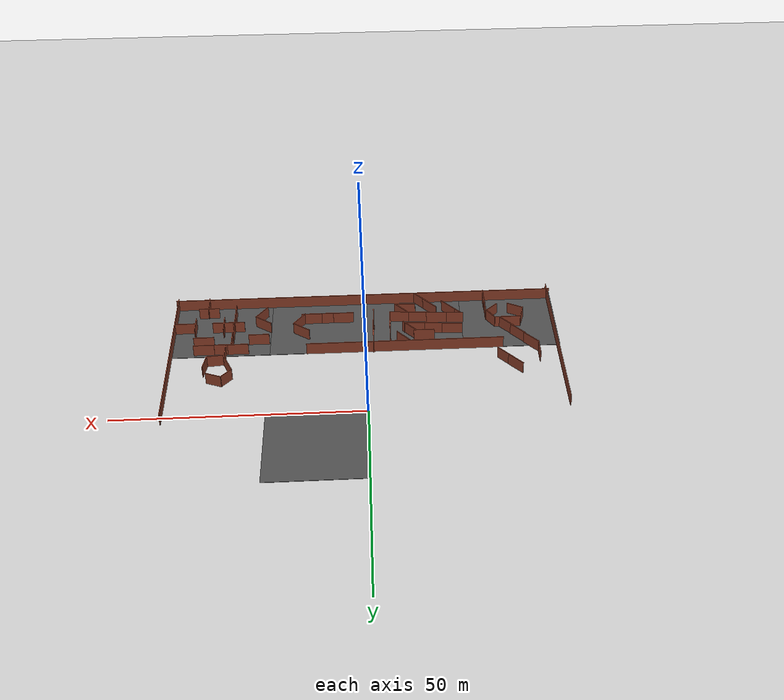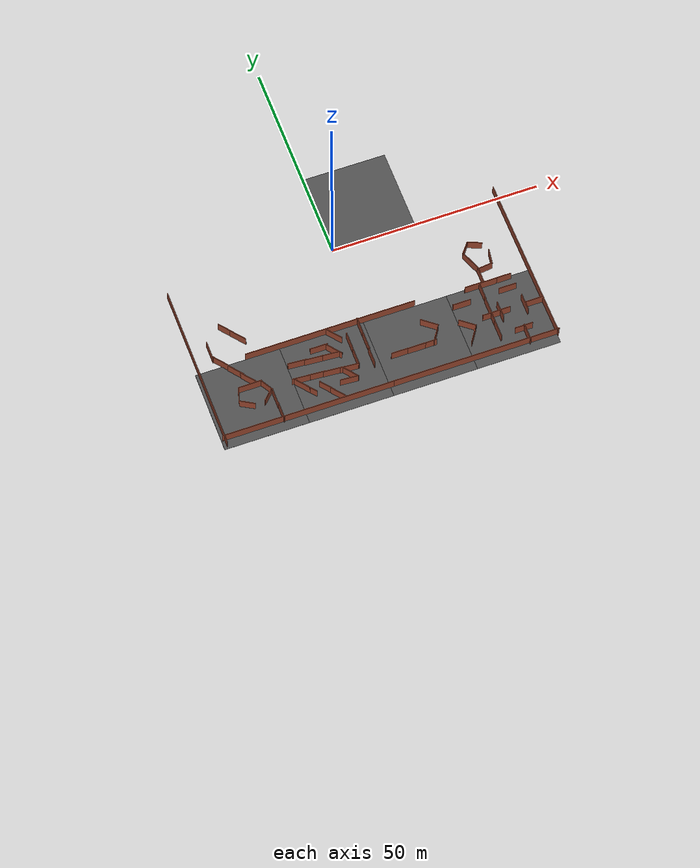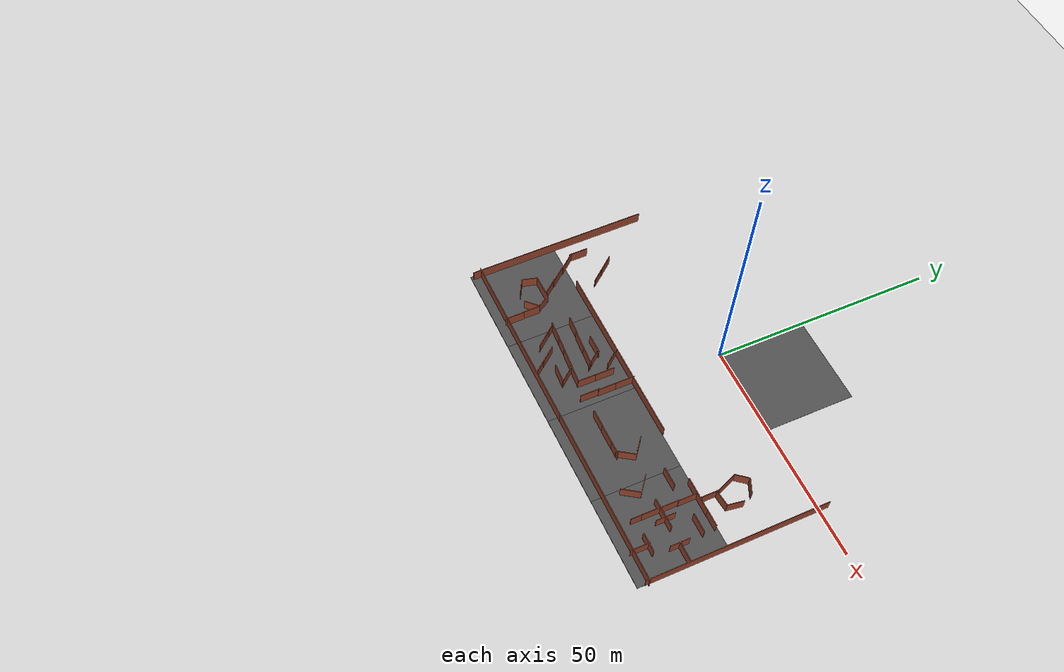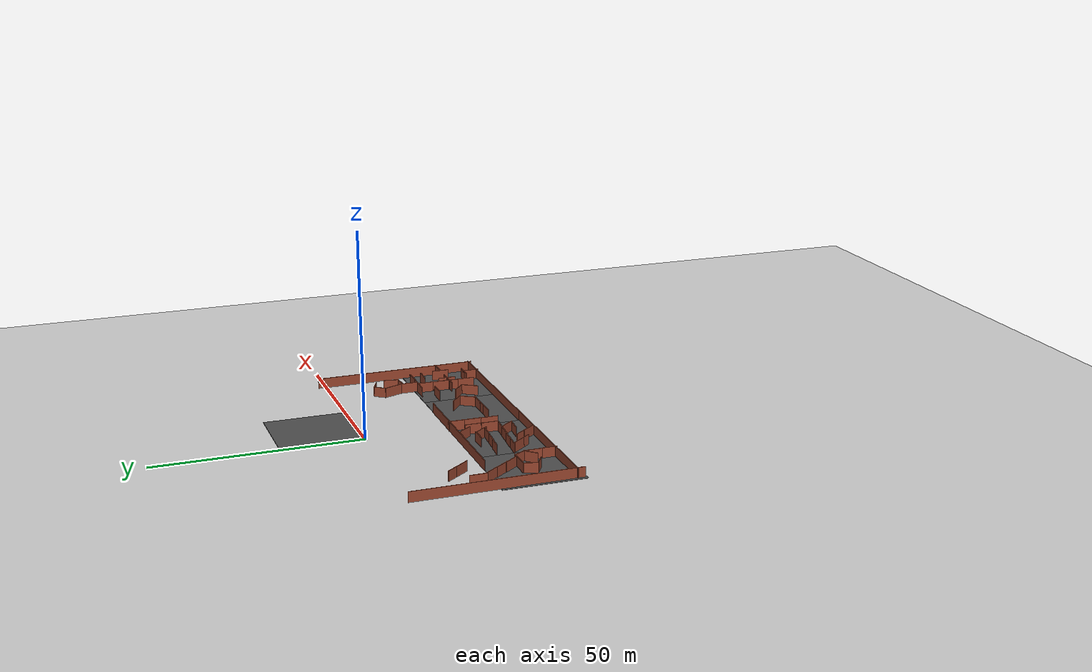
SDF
<sdf version="1.6">
 <world name="default">
  <model name="ground_plane">
   <static>1</static>
   <link name="link">
    <collision name="collision">
     <geometry><plane><normal>0 0 1</normal><size>100 100</size></plane></geometry>
     <surface><friction><ode><mu>100</mu><mu2>50</mu2></ode></friction></surface>
    </collision>
    <visual name="visual">
     <cast_shadows>0</cast_shadows>
     <geometry><plane><normal>0 0 1</normal><size>100 100</size></plane></geometry>
     <material>
      <script><uri>file://media/materials/scripts/gazebo.material</uri><name>Gazebo/Grey</name></script>
     </material>
    </visual>
   </link>
  </model>
  <model name="asphalt_plane">
   <static>1</static>
   <link name="link">
    <collision name="collision"><geometry><box><size>20 20 0.1</size></box></geometry></collision>
    <visual name="visual">
     <cast_shadows>0</cast_shadows>
     <geometry><box><size>20 20 0.1</size></box></geometry>
     <material>
      <script>
       <uri>model://asphalt_plane/materials/scripts</uri>
       <uri>model://asphalt_plane/materials/textures</uri>
       <name>vrc/asphalt</name>
      </script>
     </material>
    </visual>
   </link>
   <pose>10 10 0 0 -0 0</pose>
  </model>
  <model name="asphalt_plane_4_clone_1">
   <static>1</static>
   <link name="link">
    <collision name="collision"><geometry><box><size>20 20 0.1</size></box></geometry></collision>
    <visual name="visual">
     <cast_shadows>0</cast_shadows>
     <geometry><box><size>20 20 0.1</size></box></geometry>
     <material>
      <script>
       <uri>model://asphalt_plane/materials/scripts</uri>
       <uri>model://asphalt_plane/materials/textures</uri>
       <name>vrc/asphalt</name>
      </script>
     </material>
    </visual>
   </link>
   <pose>-30.0158 -30.1368 0 0 -0 0</pose>
  </model>
  <model name="asphalt_plane_4_clone_5">
   <static>1</static>
   <link name="link">
    <collision name="collision"><geometry><box><size>20 20 0.1</size></box></geometry></collision>
    <visual name="visual">
     <cast_shadows>0</cast_shadows>
     <geometry><box><size>20 20 0.1</size></box></geometry>
     <material>
      <script>
       <uri>model://asphalt_plane/materials/scripts</uri>
       <uri>model://asphalt_plane/materials/textures</uri>
       <name>vrc/asphalt</name>
      </script>
     </material>
    </visual>
   </link>
   <pose>-10.0155 -30.1486 0 0 -0 0</pose>
  </model>
  <model name="asphalt_plane_4_clone_7">
   <static>1</static>
   <link name="link">
    <collision name="collision"><geometry><box><size>20 20 0.1</size></box></geometry></collision>
    <visual name="visual">
     <cast_shadows>0</cast_shadows>
     <geometry><box><size>20 20 0.1</size></box></geometry>
     <material>
      <script>
       <uri>model://asphalt_plane/materials/scripts</uri>
       <uri>model://asphalt_plane/materials/textures</uri>
       <name>vrc/asphalt</name>
      </script>
     </material>
    </visual>
   </link>
   <pose>9.97841 -30.1503 0 0 -0 0</pose>
  </model>
  <model name="asphalt_plane_4_clone_14">
   <static>1</static>
   <link name="link">
    <collision name="collision"><geometry><box><size>20 20 0.1</size></box></geometry></collision>
    <visual name="visual">
     <cast_shadows>0</cast_shadows>
     <geometry><box><size>20 20 0.1</size></box></geometry>
     <material>
      <script>
       <uri>model://asphalt_plane/materials/scripts</uri>
       <uri>model://asphalt_plane/materials/textures</uri>
       <name>vrc/asphalt</name>
      </script>
     </material>
    </visual>
   </link>
   <pose>29.9745 -30.1402 0 0 -0 0</pose>
  </model>
  <model name="longwall_clone_clone_1">
   <pose>-19.4354 -37.8888 0 0 -0 0</pose>
   <link name="Wall_0">
    <collision name="Wall_0_Collision">
     <geometry><box><size>40.5 0.15 2.5</size></box></geometry>
     <pose>0 0 1.25 0 -0 0</pose>
    </collision>
    <visual name="Wall_0_Visual">
     <pose>0 0 1.25 0 -0 0</pose>
     <geometry><box><size>40.5 0.15 2.5</size></box></geometry>
     <material>
      <script><uri>file://media/materials/scripts/gazebo.material</uri><name>Gazebo/Bricks</name></script>
      <ambient>1 1 1 1</ambient>
     </material>
    </visual>
    <pose>1e-06 0 0 0 -0 0</pose>
   </link>
   <static>1</static>
  </model>
  <model name="longwall_clone_clone_3_clone_0">
   <pose>39.9316 -18.2995 0 0 0 -1.56602</pose>
   <link name="Wall_0">
    <collision name="Wall_0_Collision">
     <geometry><box><size>40.5 0.15 2.5</size></box></geometry>
     <pose>0 0 1.25 0 -0 0</pose>
    </collision>
    <visual name="Wall_0_Visual">
     <pose>0 0 1.25 0 -0 0</pose>
     <geometry><box><size>40.5 0.15 2.5</size></box></geometry>
     <material>
      <script><uri>file://media/materials/scripts/gazebo.material</uri><name>Gazebo/Bricks</name></script>
      <ambient>1 1 1 1</ambient>
     </material>
    </visual>
    <pose>1e-06 0 0 0 -0 0</pose>
   </link>
   <static>1</static>
  </model>
  <model name="longwall_clone_clone_3_clone_1">
   <pose>-39.2782 -19.4847 0 0 0 -1.56602</pose>
   <link name="Wall_0">
    <collision name="Wall_0_Collision">
     <geometry><box><size>40.5 0.15 2.5</size></box></geometry>
     <pose>0 0 1.25 0 -0 0</pose>
    </collision>
    <visual name="Wall_0_Visual">
     <pose>0 0 1.25 0 -0 0</pose>
     <geometry><box><size>40.5 0.15 2.5</size></box></geometry>
     <material>
      <script><uri>file://media/materials/scripts/gazebo.material</uri><name>Gazebo/Bricks</name></script>
      <ambient>1 1 1 1</ambient>
     </material>
    </visual>
    <pose>1e-06 0 0 0 -0 0</pose>
   </link>
   <static>1</static>
  </model>
  <model name="longwall_clone_clone_0">
   <pose>-7.88088 -20.1055 0 0 -0 0</pose>
   <link name="Wall_0">
    <collision name="Wall_0_Collision">
     <geometry><box><size>40.5 0.15 2.5</size></box></geometry>
     <pose>0 0 1.25 0 -0 0</pose>
    </collision>
    <visual name="Wall_0_Visual">
     <pose>0 0 1.25 0 -0 0</pose>
     <geometry><box><size>40.5 0.15 2.5</size></box></geometry>
     <material>
      <script><uri>file://media/materials/scripts/gazebo.material</uri><name>Gazebo/Bricks</name></script>
      <ambient>1 1 1 1</ambient>
     </material>
    </visual>
    <pose>1e-06 0 0 0 -0 0</pose>
   </link>
   <static>1</static>
  </model>
  <model name="worlds_1_clone_1_clone_clone_0_clone">
   <pose>-1.39144 -21.9286 0 0 -0 0</pose>
   <link name="Wall_0">
    <collision name="Wall_0_Collision">
     <geometry><box><size>4.25 0.15 2.5</size></box></geometry>
     <pose>0 0 1.25 0 -0 0</pose>
    </collision>
    <visual name="Wall_0_Visual">
     <pose>0 0 1.25 0 -0 0</pose>
     <geometry><box><size>4.25 0.15 2.5</size></box></geometry>
     <material>
      <script><uri>file://media/materials/scripts/gazebo.material</uri><name>Gazebo/Bricks</name></script>
      <ambient>1 1 1 1</ambient>
     </material>
    </visual>
    <pose>0 -0 0 0 -0 1.5708</pose>
   </link>
   <static>1</static>
  </model>
  <model name="worlds_1_clone_1_clone_clone_0_clone_0">
   <pose>-1.40198 -25.9018 0 0 -0 0</pose>
   <link name="Wall_0">
    <collision name="Wall_0_Collision">
     <geometry><box><size>4.25 0.15 2.5</size></box></geometry>
     <pose>0 0 1.25 0 -0 0</pose>
    </collision>
    <visual name="Wall_0_Visual">
     <pose>0 0 1.25 0 -0 0</pose>
     <geometry><box><size>4.25 0.15 2.5</size></box></geometry>
     <material>
      <script><uri>file://media/materials/scripts/gazebo.material</uri><name>Gazebo/Bricks</name></script>
      <ambient>1 1 1 1</ambient>
     </material>
    </visual>
    <pose>0 -0 0 0 -0 1.5708</pose>
   </link>
   <static>1</static>
  </model>
  <model name="worlds_1_clone_1_clone_clone_0_clone_1">
   <pose>-1.54581 -29.924 0 0 -0 0</pose>
   <link name="Wall_0">
    <collision name="Wall_0_Collision">
     <geometry><box><size>4.25 0.15 2.5</size></box></geometry>
     <pose>0 0 1.25 0 -0 0</pose>
    </collision>
    <visual name="Wall_0_Visual">
     <pose>0 0 1.25 0 -0 0</pose>
     <geometry><box><size>4.25 0.15 2.5</size></box></geometry>
     <material>
      <script><uri>file://media/materials/scripts/gazebo.material</uri><name>Gazebo/Bricks</name></script>
      <ambient>1 1 1 1</ambient>
     </material>
    </visual>
    <pose>0 -0 0 0 -0 1.5708</pose>
   </link>
   <static>1</static>
  </model>
  <model name="room1_clone_0">
   <pose>-29.363 -30.1307 0 0 -0 0</pose>
   <link name="Wall_11">
    <collision name="Wall_11_Collision">
     <geometry><box><size>3.25 0.15 2.5</size></box></geometry>
     <pose>0 0 1.25 0 -0 0</pose>
    </collision>
    <visual name="Wall_11_Visual">
     <pose>0 0 1.25 0 -0 0</pose>
     <geometry><box><size>3.25 0.15 2.5</size></box></geometry>
     <material>
      <script><uri>file://media/materials/scripts/gazebo.material</uri><name>Gazebo/Bricks</name></script>
      <ambient>1 1 1 1</ambient>
     </material>
    </visual>
    <pose>3.12132 1.19483 0 0 0 -1.0472</pose>
   </link>
   <link name="Wall_12">
    <collision name="Wall_12_Collision">
     <geometry><box><size>3.5 0.15 2.5</size></box></geometry>
     <pose>0 0 1.25 0 -0 0</pose>
    </collision>
    <visual name="Wall_12_Visual">
     <pose>0 0 1.25 0 -0 0</pose>
     <geometry><box><size>3.5 0.15 2.5</size></box></geometry>
     <material>
      <script><uri>file://media/materials/scripts/gazebo.material</uri><name>Gazebo/Bricks</name></script>
      <ambient>1 1 1 1</ambient>
     </material>
    </visual>
    <pose>2.71192 -1.33192 0 0 0 -2.35619</pose>
   </link>
   <link name="Wall_7">
    <collision name="Wall_7_Collision">
     <geometry><box><size>5.52935 0.15 2.5</size></box></geometry>
     <pose>0 0 1.25 0 -0 0</pose>
    </collision>
    <visual name="Wall_7_Visual">
     <pose>0 0 1.25 0 -0 0</pose>
     <geometry><box><size>5.52935 0.15 2.5</size></box></geometry>
     <material>
      <script><uri>file://media/materials/scripts/gazebo.material</uri><name>Gazebo/Bricks</name></script>
      <ambient>1 1 1 1</ambient>
     </material>
    </visual>
    <pose>-0.343285 2.51793 0 0 0 -3.13444</pose>
   </link>
   <link name="Wall_8">
    <collision name="Wall_8_Collision">
     <geometry><box><size>3.5 0.15 2.5</size></box></geometry>
     <pose>0 0 1.25 0 -0 0</pose>
    </collision>
    <visual name="Wall_8_Visual">
     <pose>0 0 1.25 0 -0 0</pose>
     <geometry><box><size>3.5 0.15 2.5</size></box></geometry>
     <material>
      <script><uri>file://media/materials/scripts/gazebo.material</uri><name>Gazebo/Bricks</name></script>
      <ambient>1 1 1 1</ambient>
     </material>
    </visual>
    <pose>-3.46641 0.880761 0 0 0 -1.8326</pose>
   </link>
   <link name="Wall_9">
    <collision name="Wall_9_Collision">
     <geometry><box><size>3.75 0.15 2.5</size></box></geometry>
     <pose>0 0 1.25 0 -0 0</pose>
    </collision>
    <visual name="Wall_9_Visual">
     <pose>0 0 1.25 0 -0 0</pose>
     <geometry><box><size>3.75 0.15 2.5</size></box></geometry>
     <material>
      <script><uri>file://media/materials/scripts/gazebo.material</uri><name>Gazebo/Bricks</name></script>
      <ambient>1 1 1 1</ambient>
     </material>
    </visual>
    <pose>-2.34109 -1.63716 0 0 0 -0.523599</pose>
   </link>
   <static>1</static>
  </model>
  <model name="room1_clone_1">
   <pose>30.2942 -13.443 0 0 -0 1.93941</pose>
   <link name="Wall_11">
    <collision name="Wall_11_Collision">
     <geometry><box><size>3.25 0.15 2.5</size></box></geometry>
     <pose>0 0 1.25 0 -0 0</pose>
    </collision>
    <visual name="Wall_11_Visual">
     <pose>0 0 1.25 0 -0 0</pose>
     <geometry><box><size>3.25 0.15 2.5</size></box></geometry>
     <material>
      <script><uri>file://media/materials/scripts/gazebo.material</uri><name>Gazebo/Bricks</name></script>
      <ambient>1 1 1 1</ambient>
     </material>
    </visual>
    <pose>3.12132 1.19483 0 0 0 -1.0472</pose>
   </link>
   <link name="Wall_12">
    <collision name="Wall_12_Collision">
     <geometry><box><size>3.5 0.15 2.5</size></box></geometry>
     <pose>0 0 1.25 0 -0 0</pose>
    </collision>
    <visual name="Wall_12_Visual">
     <pose>0 0 1.25 0 -0 0</pose>
     <geometry><box><size>3.5 0.15 2.5</size></box></geometry>
     <material>
      <script><uri>file://media/materials/scripts/gazebo.material</uri><name>Gazebo/Bricks</name></script>
      <ambient>1 1 1 1</ambient>
     </material>
    </visual>
    <pose>2.71192 -1.33192 0 0 0 -2.35619</pose>
   </link>
   <link name="Wall_7">
    <collision name="Wall_7_Collision">
     <geometry><box><size>5.52935 0.15 2.5</size></box></geometry>
     <pose>0 0 1.25 0 -0 0</pose>
    </collision>
    <visual name="Wall_7_Visual">
     <pose>0 0 1.25 0 -0 0</pose>
     <geometry><box><size>5.52935 0.15 2.5</size></box></geometry>
     <material>
      <script><uri>file://media/materials/scripts/gazebo.material</uri><name>Gazebo/Bricks</name></script>
      <ambient>1 1 1 1</ambient>
     </material>
    </visual>
    <pose>-0.343285 2.51793 0 0 0 -3.13444</pose>
   </link>
   <link name="Wall_8">
    <collision name="Wall_8_Collision">
     <geometry><box><size>3.5 0.15 2.5</size></box></geometry>
     <pose>0 0 1.25 0 -0 0</pose>
    </collision>
    <visual name="Wall_8_Visual">
     <pose>0 0 1.25 0 -0 0</pose>
     <geometry><box><size>3.5 0.15 2.5</size></box></geometry>
     <material>
      <script><uri>file://media/materials/scripts/gazebo.material</uri><name>Gazebo/Bricks</name></script>
      <ambient>1 1 1 1</ambient>
     </material>
    </visual>
    <pose>-3.46641 0.880761 0 0 0 -1.8326</pose>
   </link>
   <link name="Wall_9">
    <collision name="Wall_9_Collision">
     <geometry><box><size>3.75 0.15 2.5</size></box></geometry>
     <pose>0 0 1.25 0 -0 0</pose>
    </collision>
    <visual name="Wall_9_Visual">
     <pose>0 0 1.25 0 -0 0</pose>
     <geometry><box><size>3.75 0.15 2.5</size></box></geometry>
     <material>
      <script><uri>file://media/materials/scripts/gazebo.material</uri><name>Gazebo/Bricks</name></script>
      <ambient>1 1 1 1</ambient>
     </material>
    </visual>
    <pose>-2.34109 -1.63716 0 0 0 -0.523599</pose>
   </link>
   <static>1</static>
  </model>
  <model name="worlds_2_clone_clone_clone_clone_clone">
   <pose>-29.9477 -12.2917 0 0 -0 0.67691</pose>
   <link name="Wall_0">
    <collision name="Wall_0_Collision">
     <geometry><box><size>4.25 0.15 2.5</size></box></geometry>
     <pose>0 0 1.25 0 -0 0</pose>
    </collision>
    <visual name="Wall_0_Visual">
     <pose>0 0 1.25 0 -0 0</pose>
     <geometry><box><size>4.25 0.15 2.5</size></box></geometry>
     <material>
      <script><uri>file://media/materials/scripts/gazebo.material</uri><name>Gazebo/Bricks</name></script>
      <ambient>1 1 1 1</ambient>
     </material>
    </visual>
    <pose>0 -0 0 0 -0 1.5708</pose>
   </link>
   <static>1</static>
  </model>
  <model name="worlds_2_clone_clone_clone_clone_clone_0">
   <pose>-27.9819 -14.7817 0 0 -0 0.67691</pose>
   <link name="Wall_0">
    <collision name="Wall_0_Collision">
     <geometry><box><size>4.25 0.15 2.5</size></box></geometry>
     <pose>0 0 1.25 0 -0 0</pose>
    </collision>
    <visual name="Wall_0_Visual">
     <pose>0 0 1.25 0 -0 0</pose>
     <geometry><box><size>4.25 0.15 2.5</size></box></geometry>
     <material>
      <script><uri>file://media/materials/scripts/gazebo.material</uri><name>Gazebo/Bricks</name></script>
      <ambient>1 1 1 1</ambient>
     </material>
    </visual>
    <pose>0 -0 0 0 -0 1.5708</pose>
   </link>
   <static>1</static>
  </model>
  <model name="worlds_1_clone_1_clone_clone_0_clone_9_clone_0">
   <pose>-35.2165 -16.3461 0 0 -0 0</pose>
   <link name="Wall_0">
    <collision name="Wall_0_Collision">
     <geometry><box><size>4.25 0.15 2.5</size></box></geometry>
     <pose>0 0 1.25 0 -0 0</pose>
    </collision>
    <visual name="Wall_0_Visual">
     <pose>0 0 1.25 0 -0 0</pose>
     <geometry><box><size>4.25 0.15 2.5</size></box></geometry>
     <material>
      <script><uri>file://media/materials/scripts/gazebo.material</uri><name>Gazebo/Bricks</name></script>
      <ambient>1 1 1 1</ambient>
     </material>
    </visual>
    <pose>0 -0 0 0 -0 1.5708</pose>
   </link>
   <static>1</static>
  </model>
  <model name="worlds_2_clone_clone_clone_clone_clone_1">
   <pose>-33.8736 -19.771 0 0 -0 0.67691</pose>
   <link name="Wall_0">
    <collision name="Wall_0_Collision">
     <geometry><box><size>4.25 0.15 2.5</size></box></geometry>
     <pose>0 0 1.25 0 -0 0</pose>
    </collision>
    <visual name="Wall_0_Visual">
     <pose>0 0 1.25 0 -0 0</pose>
     <geometry><box><size>4.25 0.15 2.5</size></box></geometry>
     <material>
      <script><uri>file://media/materials/scripts/gazebo.material</uri><name>Gazebo/Bricks</name></script>
      <ambient>1 1 1 1</ambient>
     </material>
    </visual>
    <pose>0 -0 0 0 -0 1.5708</pose>
   </link>
   <static>1</static>
  </model>
  <model name="worlds_2_clone_clone_clone_clone_clone_1_clone">
   <pose>-31.4033 -23.0809 0 0 -0 0.67691</pose>
   <link name="Wall_0">
    <collision name="Wall_0_Collision">
     <geometry><box><size>4.25 0.15 2.5</size></box></geometry>
     <pose>0 0 1.25 0 -0 0</pose>
    </collision>
    <visual name="Wall_0_Visual">
     <pose>0 0 1.25 0 -0 0</pose>
     <geometry><box><size>4.25 0.15 2.5</size></box></geometry>
     <material>
      <script><uri>file://media/materials/scripts/gazebo.material</uri><name>Gazebo/Bricks</name></script>
      <ambient>1 1 1 1</ambient>
     </material>
    </visual>
    <pose>0 -0 0 0 -0 1.5708</pose>
   </link>
   <static>1</static>
  </model>
  <model name="worlds_2_clone_clone_clone_clone_clone_1_clone_0">
   <pose>-29.3377 -25.8604 0 0 -0 0.67691</pose>
   <link name="Wall_0">
    <collision name="Wall_0_Collision">
     <geometry><box><size>4.25 0.15 2.5</size></box></geometry>
     <pose>0 0 1.25 0 -0 0</pose>
    </collision>
    <visual name="Wall_0_Visual">
     <pose>0 0 1.25 0 -0 0</pose>
     <geometry><box><size>4.25 0.15 2.5</size></box></geometry>
     <material>
      <script><uri>file://media/materials/scripts/gazebo.material</uri><name>Gazebo/Bricks</name></script>
      <ambient>1 1 1 1</ambient>
     </material>
    </visual>
    <pose>0 -0 0 0 -0 1.5708</pose>
   </link>
   <static>1</static>
  </model>
  <model name="worlds_1_clone_1_clone_clone_0_clone_9_clone_0_clone">
   <pose>-25.337 -32.4195 0 0 -0 0</pose>
   <link name="Wall_0">
    <collision name="Wall_0_Collision">
     <geometry><box><size>4.25 0.15 2.5</size></box></geometry>
     <pose>0 0 1.25 0 -0 0</pose>
    </collision>
    <visual name="Wall_0_Visual">
     <pose>0 0 1.25 0 -0 0</pose>
     <geometry><box><size>4.25 0.15 2.5</size></box></geometry>
     <material>
      <script><uri>file://media/materials/scripts/gazebo.material</uri><name>Gazebo/Bricks</name></script>
      <ambient>1 1 1 1</ambient>
     </material>
    </visual>
    <pose>0 -0 0 0 -0 1.5708</pose>
   </link>
   <static>1</static>
  </model>
  <model name="worlds_1_clone_1_clone_clone_0_clone_9_clone_0_clone_0">
   <pose>-25.2507 -36.1022 0 0 -0 0</pose>
   <link name="Wall_0">
    <collision name="Wall_0_Collision">
     <geometry><box><size>4.25 0.15 2.5</size></box></geometry>
     <pose>0 0 1.25 0 -0 0</pose>
    </collision>
    <visual name="Wall_0_Visual">
     <pose>0 0 1.25 0 -0 0</pose>
     <geometry><box><size>4.25 0.15 2.5</size></box></geometry>
     <material>
      <script><uri>file://media/materials/scripts/gazebo.material</uri><name>Gazebo/Bricks</name></script>
      <ambient>1 1 1 1</ambient>
     </material>
    </visual>
    <pose>0 -0 0 0 -0 1.5708</pose>
   </link>
   <static>1</static>
  </model>
  <model name="worlds_0_clone_clone">
   <pose>-17.8854 -25.8259 0 0 -0 1.49697</pose>
   <link name="Wall_0">
    <collision name="Wall_0_Collision">
     <geometry><box><size>4.25 0.15 2.5</size></box></geometry>
     <pose>0 0 1.25 0 -0 0</pose>
    </collision>
    <visual name="Wall_0_Visual">
     <pose>0 0 1.25 0 -0 0</pose>
     <geometry><box><size>4.25 0.15 2.5</size></box></geometry>
     <material>
      <script><uri>file://media/materials/scripts/gazebo.material</uri><name>Gazebo/Bricks</name></script>
      <ambient>1 1 1 1</ambient>
     </material>
    </visual>
    <pose>0 -0 0 0 -0 1.5708</pose>
   </link>
   <static>1</static>
  </model>
  <model name="worlds_0_clone_clone_0">
   <pose>-14.0338 -26.1944 0 0 -0 1.49697</pose>
   <link name="Wall_0">
    <collision name="Wall_0_Collision">
     <geometry><box><size>4.25 0.15 2.5</size></box></geometry>
     <pose>0 0 1.25 0 -0 0</pose>
    </collision>
    <visual name="Wall_0_Visual">
     <pose>0 0 1.25 0 -0 0</pose>
     <geometry><box><size>4.25 0.15 2.5</size></box></geometry>
     <material>
      <script><uri>file://media/materials/scripts/gazebo.material</uri><name>Gazebo/Bricks</name></script>
      <ambient>1 1 1 1</ambient>
     </material>
    </visual>
    <pose>0 -0 0 0 -0 1.5708</pose>
   </link>
   <static>1</static>
  </model>
  <model name="worlds_0_clone_clone_1">
   <pose>-9.99419 -26.4816 0 0 -0 1.49697</pose>
   <link name="Wall_0">
    <collision name="Wall_0_Collision">
     <geometry><box><size>4.25 0.15 2.5</size></box></geometry>
     <pose>0 0 1.25 0 -0 0</pose>
    </collision>
    <visual name="Wall_0_Visual">
     <pose>0 0 1.25 0 -0 0</pose>
     <geometry><box><size>4.25 0.15 2.5</size></box></geometry>
     <material>
      <script><uri>file://media/materials/scripts/gazebo.material</uri><name>Gazebo/Bricks</name></script>
      <ambient>1 1 1 1</ambient>
     </material>
    </visual>
    <pose>0 -0 0 0 -0 1.5708</pose>
   </link>
   <static>1</static>
  </model>
  <model name="worlds_2_clone_clone_0">
   <pose>-8.91866 -25.553 0 0 -0 0.67691</pose>
   <link name="Wall_0">
    <collision name="Wall_0_Collision">
     <geometry><box><size>4.25 0.15 2.5</size></box></geometry>
     <pose>0 0 1.25 0 -0 0</pose>
    </collision>
    <visual name="Wall_0_Visual">
     <pose>0 0 1.25 0 -0 0</pose>
     <geometry><box><size>4.25 0.15 2.5</size></box></geometry>
     <material>
      <script><uri>file://media/materials/scripts/gazebo.material</uri><name>Gazebo/Bricks</name></script>
      <ambient>1 1 1 1</ambient>
     </material>
    </visual>
    <pose>0 -0 0 0 -0 1.5708</pose>
   </link>
   <static>1</static>
  </model>
  <model name="worlds_1_clone_0_clone_clone_0_clone_clone_1_clone">
   <pose>-11.9094 -23.8093 0 0 0 -1.57092</pose>
   <link name="Wall_0">
    <collision name="Wall_0_Collision">
     <geometry><box><size>4.25 0.15 2.5</size></box></geometry>
     <pose>0 0 1.25 0 -0 0</pose>
    </collision>
    <visual name="Wall_0_Visual">
     <pose>0 0 1.25 0 -0 0</pose>
     <geometry><box><size>4.25 0.15 2.5</size></box></geometry>
     <material>
      <script><uri>file://media/materials/scripts/gazebo.material</uri><name>Gazebo/Bricks</name></script>
      <ambient>1 1 1 1</ambient>
     </material>
    </visual>
    <pose>0 -0 0 0 -0 1.5708</pose>
   </link>
   <static>1</static>
  </model>
  <model name="worlds_2_clone_clone_0_clone">
   <pose>-7.5923 -21.8607 0 0 -0 0.67691</pose>
   <link name="Wall_0">
    <collision name="Wall_0_Collision">
     <geometry><box><size>4.25 0.15 2.5</size></box></geometry>
     <pose>0 0 1.25 0 -0 0</pose>
    </collision>
    <visual name="Wall_0_Visual">
     <pose>0 0 1.25 0 -0 0</pose>
     <geometry><box><size>4.25 0.15 2.5</size></box></geometry>
     <material>
      <script><uri>file://media/materials/scripts/gazebo.material</uri><name>Gazebo/Bricks</name></script>
      <ambient>1 1 1 1</ambient>
     </material>
    </visual>
    <pose>0 -0 0 0 -0 1.5708</pose>
   </link>
   <static>1</static>
  </model>
  <model name="worlds_1_clone_1_clone_clone_0_clone_0_clone">
   <pose>-4.91824 -24.8572 0 0 -0 0</pose>
   <link name="Wall_0">
    <collision name="Wall_0_Collision">
     <geometry><box><size>4.25 0.15 2.5</size></box></geometry>
     <pose>0 0 1.25 0 -0 0</pose>
    </collision>
    <visual name="Wall_0_Visual">
     <pose>0 0 1.25 0 -0 0</pose>
     <geometry><box><size>4.25 0.15 2.5</size></box></geometry>
     <material>
      <script><uri>file://media/materials/scripts/gazebo.material</uri><name>Gazebo/Bricks</name></script>
      <ambient>1 1 1 1</ambient>
     </material>
    </visual>
    <pose>0 -0 0 0 -0 1.5708</pose>
   </link>
   <static>1</static>
  </model>
  <model name="worlds_1_clone_1_clone_clone_0_clone_0_clone_clone">
   <pose>-4.95297 -28.8744 0 0 -0 0</pose>
   <link name="Wall_0">
    <collision name="Wall_0_Collision">
     <geometry><box><size>4.25 0.15 2.5</size></box></geometry>
     <pose>0 0 1.25 0 -0 0</pose>
    </collision>
    <visual name="Wall_0_Visual">
     <pose>0 0 1.25 0 -0 0</pose>
     <geometry><box><size>4.25 0.15 2.5</size></box></geometry>
     <material>
      <script><uri>file://media/materials/scripts/gazebo.material</uri><name>Gazebo/Bricks</name></script>
      <ambient>1 1 1 1</ambient>
     </material>
    </visual>
    <pose>0 -0 0 0 -0 1.5708</pose>
   </link>
   <static>1</static>
  </model>
  <model name="worlds_0_clone_clone_clone">
   <pose>-7.17473 -30.7691 0 0 -0 1.49697</pose>
   <link name="Wall_0">
    <collision name="Wall_0_Collision">
     <geometry><box><size>4.25 0.15 2.5</size></box></geometry>
     <pose>0 0 1.25 0 -0 0</pose>
    </collision>
    <visual name="Wall_0_Visual">
     <pose>0 0 1.25 0 -0 0</pose>
     <geometry><box><size>4.25 0.15 2.5</size></box></geometry>
     <material>
      <script><uri>file://media/materials/scripts/gazebo.material</uri><name>Gazebo/Bricks</name></script>
      <ambient>1 1 1 1</ambient>
     </material>
    </visual>
    <pose>0 -0 0 0 -0 1.5708</pose>
   </link>
   <static>1</static>
  </model>
  <model name="worlds_0_clone_clone_clone_0">
   <pose>-11.104 -30.4234 0 0 -0 1.49697</pose>
   <link name="Wall_0">
    <collision name="Wall_0_Collision">
     <geometry><box><size>4.25 0.15 2.5</size></box></geometry>
     <pose>0 0 1.25 0 -0 0</pose>
    </collision>
    <visual name="Wall_0_Visual">
     <pose>0 0 1.25 0 -0 0</pose>
     <geometry><box><size>4.25 0.15 2.5</size></box></geometry>
     <material>
      <script><uri>file://media/materials/scripts/gazebo.material</uri><name>Gazebo/Bricks</name></script>
      <ambient>1 1 1 1</ambient>
     </material>
    </visual>
    <pose>0 -0 0 0 -0 1.5708</pose>
   </link>
   <static>1</static>
  </model>
  <model name="worlds_0_clone_clone_clone_1">
   <pose>-14.7934 -30.0953 0 0 -0 1.49697</pose>
   <link name="Wall_0">
    <collision name="Wall_0_Collision">
     <geometry><box><size>4.25 0.15 2.5</size></box></geometry>
     <pose>0 0 1.25 0 -0 0</pose>
    </collision>
    <visual name="Wall_0_Visual">
     <pose>0 0 1.25 0 -0 0</pose>
     <geometry><box><size>4.25 0.15 2.5</size></box></geometry>
     <material>
      <script><uri>file://media/materials/scripts/gazebo.material</uri><name>Gazebo/Bricks</name></script>
      <ambient>1 1 1 1</ambient>
     </material>
    </visual>
    <pose>0 -0 0 0 -0 1.5708</pose>
   </link>
   <static>1</static>
  </model>
  <model name="worlds_0_clone_clone_clone_2">
   <pose>-18.2918 -29.8617 0 0 -0 1.49697</pose>
   <link name="Wall_0">
    <collision name="Wall_0_Collision">
     <geometry><box><size>4.25 0.15 2.5</size></box></geometry>
     <pose>0 0 1.25 0 -0 0</pose>
    </collision>
    <visual name="Wall_0_Visual">
     <pose>0 0 1.25 0 -0 0</pose>
     <geometry><box><size>4.25 0.15 2.5</size></box></geometry>
     <material>
      <script><uri>file://media/materials/scripts/gazebo.material</uri><name>Gazebo/Bricks</name></script>
      <ambient>1 1 1 1</ambient>
     </material>
    </visual>
    <pose>0 -0 0 0 -0 1.5708</pose>
   </link>
   <static>1</static>
  </model>
  <model name="worlds_2_clone_clone_0_clone_0">
   <pose>-18.6653 -31.3572 0 0 -0 0.67691</pose>
   <link name="Wall_0">
    <collision name="Wall_0_Collision">
     <geometry><box><size>4.25 0.15 2.5</size></box></geometry>
     <pose>0 0 1.25 0 -0 0</pose>
    </collision>
    <visual name="Wall_0_Visual">
     <pose>0 0 1.25 0 -0 0</pose>
     <geometry><box><size>4.25 0.15 2.5</size></box></geometry>
     <material>
      <script><uri>file://media/materials/scripts/gazebo.material</uri><name>Gazebo/Bricks</name></script>
      <ambient>1 1 1 1</ambient>
     </material>
    </visual>
    <pose>0 -0 0 0 -0 1.5708</pose>
   </link>
   <static>1</static>
  </model>
  <model name="worlds_2_clone_clone_0_clone_1">
   <pose>-17.4557 -32.8462 0 0 -0 0.67691</pose>
   <link name="Wall_0">
    <collision name="Wall_0_Collision">
     <geometry><box><size>4.25 0.15 2.5</size></box></geometry>
     <pose>0 0 1.25 0 -0 0</pose>
    </collision>
    <visual name="Wall_0_Visual">
     <pose>0 0 1.25 0 -0 0</pose>
     <geometry><box><size>4.25 0.15 2.5</size></box></geometry>
     <material>
      <script><uri>file://media/materials/scripts/gazebo.material</uri><name>Gazebo/Bricks</name></script>
      <ambient>1 1 1 1</ambient>
     </material>
    </visual>
    <pose>0 -0 0 0 -0 1.5708</pose>
   </link>
   <static>1</static>
  </model>
  <model name="worlds_2_clone_clone_0_clone_2">
   <pose>-13.5223 -33.8944 0 0 -0 0.67691</pose>
   <link name="Wall_0">
    <collision name="Wall_0_Collision">
     <geometry><box><size>4.25 0.15 2.5</size></box></geometry>
     <pose>0 0 1.25 0 -0 0</pose>
    </collision>
    <visual name="Wall_0_Visual">
     <pose>0 0 1.25 0 -0 0</pose>
     <geometry><box><size>4.25 0.15 2.5</size></box></geometry>
     <material>
      <script><uri>file://media/materials/scripts/gazebo.material</uri><name>Gazebo/Bricks</name></script>
      <ambient>1 1 1 1</ambient>
     </material>
    </visual>
    <pose>0 -0 0 0 -0 1.5708</pose>
   </link>
   <static>1</static>
  </model>
  <model name="worlds_2_clone_clone_0_clone_3">
   <pose>-11.7246 -36.2095 0 0 -0 0.67691</pose>
   <link name="Wall_0">
    <collision name="Wall_0_Collision">
     <geometry><box><size>4.25 0.15 2.5</size></box></geometry>
     <pose>0 0 1.25 0 -0 0</pose>
    </collision>
    <visual name="Wall_0_Visual">
     <pose>0 0 1.25 0 -0 0</pose>
     <geometry><box><size>4.25 0.15 2.5</size></box></geometry>
     <material>
      <script><uri>file://media/materials/scripts/gazebo.material</uri><name>Gazebo/Bricks</name></script>
      <ambient>1 1 1 1</ambient>
     </material>
    </visual>
    <pose>0 -0 0 0 -0 1.5708</pose>
   </link>
   <static>1</static>
  </model>
  <model name="worlds_2_clone_clone_0_clone_2_clone">
   <pose>-7.45381 -32.2899 0 0 -0 0.67691</pose>
   <link name="Wall_0">
    <collision name="Wall_0_Collision">
     <geometry><box><size>4.25 0.15 2.5</size></box></geometry>
     <pose>0 0 1.25 0 -0 0</pose>
    </collision>
    <visual name="Wall_0_Visual">
     <pose>0 0 1.25 0 -0 0</pose>
     <geometry><box><size>4.25 0.15 2.5</size></box></geometry>
     <material>
      <script><uri>file://media/materials/scripts/gazebo.material</uri><name>Gazebo/Bricks</name></script>
      <ambient>1 1 1 1</ambient>
     </material>
    </visual>
    <pose>0 -0 0 0 -0 1.5708</pose>
   </link>
   <static>1</static>
  </model>
  <model name="worlds_0_clone_clone_1_clone">
   <pose>-8.33317 -33.6977 0 0 -0 1.49697</pose>
   <link name="Wall_0">
    <collision name="Wall_0_Collision">
     <geometry><box><size>4.25 0.15 2.5</size></box></geometry>
     <pose>0 0 1.25 0 -0 0</pose>
    </collision>
    <visual name="Wall_0_Visual">
     <pose>0 0 1.25 0 -0 0</pose>
     <geometry><box><size>4.25 0.15 2.5</size></box></geometry>
     <material>
      <script><uri>file://media/materials/scripts/gazebo.material</uri><name>Gazebo/Bricks</name></script>
      <ambient>1 1 1 1</ambient>
     </material>
    </visual>
    <pose>0 -0 0 0 -0 1.5708</pose>
   </link>
   <static>1</static>
  </model>
  <model name="worlds_1_clone_0_clone_clone_0_clone_clone_0_clone_clone_clone_clone">
   <pose>4.81779 -31.1067 0 0 0 -1.57092</pose>
   <link name="Wall_0">
    <collision name="Wall_0_Collision">
     <geometry><box><size>4.25 0.15 2.5</size></box></geometry>
     <pose>0 0 1.25 0 -0 0</pose>
    </collision>
    <visual name="Wall_0_Visual">
     <pose>0 0 1.25 0 -0 0</pose>
     <geometry><box><size>4.25 0.15 2.5</size></box></geometry>
     <material>
      <script><uri>file://media/materials/scripts/gazebo.material</uri><name>Gazebo/Bricks</name></script>
      <ambient>1 1 1 1</ambient>
     </material>
    </visual>
    <pose>0 -0 0 0 -0 1.5708</pose>
   </link>
   <static>1</static>
  </model>
  <model name="worlds_1_clone_0_clone_clone_0_clone_clone_0_clone_clone_clone_clone_0">
   <pose>8.72962 -31.1514 0 0 0 -1.57092</pose>
   <link name="Wall_0">
    <collision name="Wall_0_Collision">
     <geometry><box><size>4.25 0.15 2.5</size></box></geometry>
     <pose>0 0 1.25 0 -0 0</pose>
    </collision>
    <visual name="Wall_0_Visual">
     <pose>0 0 1.25 0 -0 0</pose>
     <geometry><box><size>4.25 0.15 2.5</size></box></geometry>
     <material>
      <script><uri>file://media/materials/scripts/gazebo.material</uri><name>Gazebo/Bricks</name></script>
      <ambient>1 1 1 1</ambient>
     </material>
    </visual>
    <pose>0 -0 0 0 -0 1.5708</pose>
   </link>
   <static>1</static>
  </model>
  <model name="worlds_1_clone_0_clone_clone_0_clone_clone_0_clone_clone_clone_clone_1">
   <pose>11.493 -31.135 0 0 0 -1.57092</pose>
   <link name="Wall_0">
    <collision name="Wall_0_Collision">
     <geometry><box><size>4.25 0.15 2.5</size></box></geometry>
     <pose>0 0 1.25 0 -0 0</pose>
    </collision>
    <visual name="Wall_0_Visual">
     <pose>0 0 1.25 0 -0 0</pose>
     <geometry><box><size>4.25 0.15 2.5</size></box></geometry>
     <material>
      <script><uri>file://media/materials/scripts/gazebo.material</uri><name>Gazebo/Bricks</name></script>
      <ambient>1 1 1 1</ambient>
     </material>
    </visual>
    <pose>0 -0 0 0 -0 1.5708</pose>
   </link>
   <static>1</static>
  </model>
  <model name="worlds_1_clone_1_clone_7_clone_clone_clone_clone_0">
   <pose>14.0196 -29.5132 0 0 0 -0.589381</pose>
   <link name="Wall_0">
    <collision name="Wall_0_Collision">
     <geometry><box><size>4.25 0.15 2.5</size></box></geometry>
     <pose>0 0 1.25 0 -0 0</pose>
    </collision>
    <visual name="Wall_0_Visual">
     <pose>0 0 1.25 0 -0 0</pose>
     <geometry><box><size>4.25 0.15 2.5</size></box></geometry>
     <material>
      <script><uri>file://media/materials/scripts/gazebo.material</uri><name>Gazebo/Bricks</name></script>
      <ambient>1 1 1 1</ambient>
     </material>
    </visual>
    <pose>0 -0 0 0 -0 1.5708</pose>
   </link>
   <static>1</static>
  </model>
  <model name="worlds_1_clone_1_clone_7_clone_clone_0_clone_0_clone">
   <pose>13.5356 -26.452 0 0 -0 0.90029</pose>
   <link name="Wall_0">
    <collision name="Wall_0_Collision">
     <geometry><box><size>4.25 0.15 2.5</size></box></geometry>
     <pose>0 0 1.25 0 -0 0</pose>
    </collision>
    <visual name="Wall_0_Visual">
     <pose>0 0 1.25 0 -0 0</pose>
     <geometry><box><size>4.25 0.15 2.5</size></box></geometry>
     <material>
      <script><uri>file://media/materials/scripts/gazebo.material</uri><name>Gazebo/Bricks</name></script>
      <ambient>1 1 1 1</ambient>
     </material>
    </visual>
    <pose>0 -0 0 0 -0 1.5708</pose>
   </link>
   <static>1</static>
  </model>
  <model name="worlds_1_clone_0_clone_clone_clone">
   <pose>33.5149 -23.633 0 0 0 -1.57092</pose>
   <link name="Wall_0">
    <collision name="Wall_0_Collision">
     <geometry><box><size>4.25 0.15 2.5</size></box></geometry>
     <pose>0 0 1.25 0 -0 0</pose>
    </collision>
    <visual name="Wall_0_Visual">
     <pose>0 0 1.25 0 -0 0</pose>
     <geometry><box><size>4.25 0.15 2.5</size></box></geometry>
     <material>
      <script><uri>file://media/materials/scripts/gazebo.material</uri><name>Gazebo/Bricks</name></script>
      <ambient>1 1 1 1</ambient>
     </material>
    </visual>
    <pose>0 -0 0 0 -0 1.5708</pose>
   </link>
   <static>1</static>
  </model>
  <model name="worlds_1_clone_0_clone_clone_clone_0">
   <pose>33.2444 -34.4697 0 0 0 -1.57092</pose>
   <link name="Wall_0">
    <collision name="Wall_0_Collision">
     <geometry><box><size>4.25 0.15 2.5</size></box></geometry>
     <pose>0 0 1.25 0 -0 0</pose>
    </collision>
    <visual name="Wall_0_Visual">
     <pose>0 0 1.25 0 -0 0</pose>
     <geometry><box><size>4.25 0.15 2.5</size></box></geometry>
     <material>
      <script><uri>file://media/materials/scripts/gazebo.material</uri><name>Gazebo/Bricks</name></script>
      <ambient>1 1 1 1</ambient>
     </material>
    </visual>
    <pose>0 -0 0 0 -0 1.5708</pose>
   </link>
   <static>1</static>
  </model>
  <model name="worlds_1_clone_0_clone_clone_clone_1">
   <pose>27.5975 -28.9334 0 0 0 -1.57092</pose>
   <link name="Wall_0">
    <collision name="Wall_0_Collision">
     <geometry><box><size>4.25 0.15 2.5</size></box></geometry>
     <pose>0 0 1.25 0 -0 0</pose>
    </collision>
    <visual name="Wall_0_Visual">
     <pose>0 0 1.25 0 -0 0</pose>
     <geometry><box><size>4.25 0.15 2.5</size></box></geometry>
     <material>
      <script><uri>file://media/materials/scripts/gazebo.material</uri><name>Gazebo/Bricks</name></script>
      <ambient>1 1 1 1</ambient>
     </material>
    </visual>
    <pose>0 -0 0 0 -0 1.5708</pose>
   </link>
   <static>1</static>
  </model>
  <model name="worlds_1_clone_0_clone_clone_clone_2">
   <pose>37.7856 -28.9348 0 0 0 -1.57092</pose>
   <link name="Wall_0">
    <collision name="Wall_0_Collision">
     <geometry><box><size>4.25 0.15 2.5</size></box></geometry>
     <pose>0 0 1.25 0 -0 0</pose>
    </collision>
    <visual name="Wall_0_Visual">
     <pose>0 0 1.25 0 -0 0</pose>
     <geometry><box><size>4.25 0.15 2.5</size></box></geometry>
     <material>
      <script><uri>file://media/materials/scripts/gazebo.material</uri><name>Gazebo/Bricks</name></script>
      <ambient>1 1 1 1</ambient>
     </material>
    </visual>
    <pose>0 -0 0 0 -0 1.5708</pose>
   </link>
   <static>1</static>
  </model>
  <model name="worlds_1_clone_clone_clone_clone">
   <pose>35.6489 -28.894 0 0 -0 0</pose>
   <link name="Wall_0">
    <collision name="Wall_0_Collision">
     <geometry><box><size>4.25 0.15 2.5</size></box></geometry>
     <pose>0 0 1.25 0 -0 0</pose>
    </collision>
    <visual name="Wall_0_Visual">
     <pose>0 0 1.25 0 -0 0</pose>
     <geometry><box><size>4.25 0.15 2.5</size></box></geometry>
     <material>
      <script><uri>file://media/materials/scripts/gazebo.material</uri><name>Gazebo/Bricks</name></script>
      <ambient>1 1 1 1</ambient>
     </material>
    </visual>
    <pose>0 -0 0 0 -0 1.5708</pose>
   </link>
   <static>1</static>
  </model>
  <model name="worlds_1_clone_clone_clone_clone_0">
   <pose>29.734 -28.8659 0 0 -0 0</pose>
   <link name="Wall_0">
    <collision name="Wall_0_Collision">
     <geometry><box><size>4.25 0.15 2.5</size></box></geometry>
     <pose>0 0 1.25 0 -0 0</pose>
    </collision>
    <visual name="Wall_0_Visual">
     <pose>0 0 1.25 0 -0 0</pose>
     <geometry><box><size>4.25 0.15 2.5</size></box></geometry>
     <material>
      <script><uri>file://media/materials/scripts/gazebo.material</uri><name>Gazebo/Bricks</name></script>
      <ambient>1 1 1 1</ambient>
     </material>
    </visual>
    <pose>0 -0 0 0 -0 1.5708</pose>
   </link>
   <static>1</static>
  </model>
  <model name="worlds_1_clone_clone_clone_clone_1">
   <pose>33.381 -36.268 0 0 -0 0</pose>
   <link name="Wall_0">
    <collision name="Wall_0_Collision">
     <geometry><box><size>4.25 0.15 2.5</size></box></geometry>
     <pose>0 0 1.25 0 -0 0</pose>
    </collision>
    <visual name="Wall_0_Visual">
     <pose>0 0 1.25 0 -0 0</pose>
     <geometry><box><size>4.25 0.15 2.5</size></box></geometry>
     <material>
      <script><uri>file://media/materials/scripts/gazebo.material</uri><name>Gazebo/Bricks</name></script>
      <ambient>1 1 1 1</ambient>
     </material>
    </visual>
    <pose>0 -0 0 0 -0 1.5708</pose>
   </link>
   <static>1</static>
  </model>
  <model name="worlds_1_clone_clone_clone_clone_2">
   <pose>27.5229 -30.8692 0 0 -0 0</pose>
   <link name="Wall_0">
    <collision name="Wall_0_Collision">
     <geometry><box><size>4.25 0.15 2.5</size></box></geometry>
     <pose>0 0 1.25 0 -0 0</pose>
    </collision>
    <visual name="Wall_0_Visual">
     <pose>0 0 1.25 0 -0 0</pose>
     <geometry><box><size>4.25 0.15 2.5</size></box></geometry>
     <material>
      <script><uri>file://media/materials/scripts/gazebo.material</uri><name>Gazebo/Bricks</name></script>
      <ambient>1 1 1 1</ambient>
     </material>
    </visual>
    <pose>0 -0 0 0 -0 1.5708</pose>
   </link>
   <static>1</static>
  </model>
  <model name="worlds_1_clone_clone_clone_clone_3">
   <pose>27.5192 -33.2309 0 0 -0 0</pose>
   <link name="Wall_0">
    <collision name="Wall_0_Collision">
     <geometry><box><size>4.25 0.15 2.5</size></box></geometry>
     <pose>0 0 1.25 0 -0 0</pose>
    </collision>
    <visual name="Wall_0_Visual">
     <pose>0 0 1.25 0 -0 0</pose>
     <geometry><box><size>4.25 0.15 2.5</size></box></geometry>
     <material>
      <script><uri>file://media/materials/scripts/gazebo.material</uri><name>Gazebo/Bricks</name></script>
      <ambient>1 1 1 1</ambient>
     </material>
    </visual>
    <pose>0 -0 0 0 -0 1.5708</pose>
   </link>
   <static>1</static>
  </model>
  <model name="worlds_1_clone_clone_clone_clone_4">
   <pose>27.6096 -26.7617 0 0 -0 0</pose>
   <link name="Wall_0">
    <collision name="Wall_0_Collision">
     <geometry><box><size>4.25 0.15 2.5</size></box></geometry>
     <pose>0 0 1.25 0 -0 0</pose>
    </collision>
    <visual name="Wall_0_Visual">
     <pose>0 0 1.25 0 -0 0</pose>
     <geometry><box><size>4.25 0.15 2.5</size></box></geometry>
     <material>
      <script><uri>file://media/materials/scripts/gazebo.material</uri><name>Gazebo/Bricks</name></script>
      <ambient>1 1 1 1</ambient>
     </material>
    </visual>
    <pose>0 -0 0 0 -0 1.5708</pose>
   </link>
   <static>1</static>
  </model>
  <model name="worlds_1_clone_clone_clone_clone_5">
   <pose>27.707 -22.8815 0 0 -0 0</pose>
   <link name="Wall_0">
    <collision name="Wall_0_Collision">
     <geometry><box><size>4.25 0.15 2.5</size></box></geometry>
     <pose>0 0 1.25 0 -0 0</pose>
    </collision>
    <visual name="Wall_0_Visual">
     <pose>0 0 1.25 0 -0 0</pose>
     <geometry><box><size>4.25 0.15 2.5</size></box></geometry>
     <material>
      <script><uri>file://media/materials/scripts/gazebo.material</uri><name>Gazebo/Bricks</name></script>
      <ambient>1 1 1 1</ambient>
     </material>
    </visual>
    <pose>0 -0 0 0 -0 1.5708</pose>
   </link>
   <static>1</static>
  </model>
  <model name="worlds_1_clone_0_clone_clone_clone_clone">
   <pose>29.7687 -20.8654 0 0 0 -1.57092</pose>
   <link name="Wall_0">
    <collision name="Wall_0_Collision">
     <geometry><box><size>4.25 0.15 2.5</size></box></geometry>
     <pose>0 0 1.25 0 -0 0</pose>
    </collision>
    <visual name="Wall_0_Visual">
     <pose>0 0 1.25 0 -0 0</pose>
     <geometry><box><size>4.25 0.15 2.5</size></box></geometry>
     <material>
      <script><uri>file://media/materials/scripts/gazebo.material</uri><name>Gazebo/Bricks</name></script>
      <ambient>1 1 1 1</ambient>
     </material>
    </visual>
    <pose>0 -0 0 0 -0 1.5708</pose>
   </link>
   <static>1</static>
  </model>
  <model name="worlds_1_clone_0_clone_clone_clone_clone_0">
   <pose>33.3358 -20.8342 0 0 0 -1.57092</pose>
   <link name="Wall_0">
    <collision name="Wall_0_Collision">
     <geometry><box><size>4.25 0.15 2.5</size></box></geometry>
     <pose>0 0 1.25 0 -0 0</pose>
    </collision>
    <visual name="Wall_0_Visual">
     <pose>0 0 1.25 0 -0 0</pose>
     <geometry><box><size>4.25 0.15 2.5</size></box></geometry>
     <material>
      <script><uri>file://media/materials/scripts/gazebo.material</uri><name>Gazebo/Bricks</name></script>
      <ambient>1 1 1 1</ambient>
     </material>
    </visual>
    <pose>0 -0 0 0 -0 1.5708</pose>
   </link>
   <static>1</static>
  </model>
  <model name="worlds_1_clone_0_clone_clone_clone_clone_1">
   <pose>30.0078 -28.8997 0 0 0 -1.57092</pose>
   <link name="Wall_0">
    <collision name="Wall_0_Collision">
     <geometry><box><size>4.25 0.15 2.5</size></box></geometry>
     <pose>0 0 1.25 0 -0 0</pose>
    </collision>
    <visual name="Wall_0_Visual">
     <pose>0 0 1.25 0 -0 0</pose>
     <geometry><box><size>4.25 0.15 2.5</size></box></geometry>
     <material>
      <script><uri>file://media/materials/scripts/gazebo.material</uri><name>Gazebo/Bricks</name></script>
      <ambient>1 1 1 1</ambient>
     </material>
    </visual>
    <pose>0 -0 0 0 -0 1.5708</pose>
   </link>
   <static>1</static>
  </model>
  <model name="worlds_1_clone_0_clone_clone_clone_clone_2">
   <pose>26.3534 -20.7976 0 0 0 -1.57092</pose>
   <link name="Wall_0">
    <collision name="Wall_0_Collision">
     <geometry><box><size>4.25 0.15 2.5</size></box></geometry>
     <pose>0 0 1.25 0 -0 0</pose>
    </collision>
    <visual name="Wall_0_Visual">
     <pose>0 0 1.25 0 -0 0</pose>
     <geometry><box><size>4.25 0.15 2.5</size></box></geometry>
     <material>
      <script><uri>file://media/materials/scripts/gazebo.material</uri><name>Gazebo/Bricks</name></script>
      <ambient>1 1 1 1</ambient>
     </material>
    </visual>
    <pose>0 -0 0 0 -0 1.5708</pose>
   </link>
   <static>1</static>
  </model>
  <model name="worlds_1_clone_0_clone_clone_clone_clone_3">
   <pose>22.2405 -24.1054 0 0 0 -1.57092</pose>
   <link name="Wall_0">
    <collision name="Wall_0_Collision">
     <geometry><box><size>4.25 0.15 2.5</size></box></geometry>
     <pose>0 0 1.25 0 -0 0</pose>
    </collision>
    <visual name="Wall_0_Visual">
     <pose>0 0 1.25 0 -0 0</pose>
     <geometry><box><size>4.25 0.15 2.5</size></box></geometry>
     <material>
      <script><uri>file://media/materials/scripts/gazebo.material</uri><name>Gazebo/Bricks</name></script>
      <ambient>1 1 1 1</ambient>
     </material>
    </visual>
    <pose>0 -0 0 0 -0 1.5708</pose>
   </link>
   <static>1</static>
  </model>
  <model name="worlds_1_clone_clone_clone_clone_5_clone">
   <pose>28.8638 -18.7584 0 0 -0 0</pose>
   <link name="Wall_0">
    <collision name="Wall_0_Collision">
     <geometry><box><size>4.25 0.15 2.5</size></box></geometry>
     <pose>0 0 1.25 0 -0 0</pose>
    </collision>
    <visual name="Wall_0_Visual">
     <pose>0 0 1.25 0 -0 0</pose>
     <geometry><box><size>4.25 0.15 2.5</size></box></geometry>
     <material>
      <script><uri>file://media/materials/scripts/gazebo.material</uri><name>Gazebo/Bricks</name></script>
      <ambient>1 1 1 1</ambient>
     </material>
    </visual>
    <pose>0 -0 0 0 -0 1.5708</pose>
   </link>
   <static>1</static>
  </model>
  <model name="worlds_1_clone_1_clone_7_clone_clone_0_clone_0_clone_clone">
   <pose>21.537 -29.4816 0 0 -0 0.90029</pose>
   <link name="Wall_0">
    <collision name="Wall_0_Collision">
     <geometry><box><size>4.25 0.15 2.5</size></box></geometry>
     <pose>0 0 1.25 0 -0 0</pose>
    </collision>
    <visual name="Wall_0_Visual">
     <pose>0 0 1.25 0 -0 0</pose>
     <geometry><box><size>4.25 0.15 2.5</size></box></geometry>
     <material>
      <script><uri>file://media/materials/scripts/gazebo.material</uri><name>Gazebo/Bricks</name></script>
      <ambient>1 1 1 1</ambient>
     </material>
    </visual>
    <pose>0 -0 0 0 -0 1.5708</pose>
   </link>
   <static>1</static>
  </model>
  <model name="worlds_1_clone_1_clone_7_clone_clone_clone_clone_0_clone">
   <pose>21.9701 -32.5172 0 0 0 -0.589381</pose>
   <link name="Wall_0">
    <collision name="Wall_0_Collision">
     <geometry><box><size>4.25 0.15 2.5</size></box></geometry>
     <pose>0 0 1.25 0 -0 0</pose>
    </collision>
    <visual name="Wall_0_Visual">
     <pose>0 0 1.25 0 -0 0</pose>
     <geometry><box><size>4.25 0.15 2.5</size></box></geometry>
     <material>
      <script><uri>file://media/materials/scripts/gazebo.material</uri><name>Gazebo/Bricks</name></script>
      <ambient>1 1 1 1</ambient>
     </material>
    </visual>
    <pose>0 -0 0 0 -0 1.5708</pose>
   </link>
   <static>1</static>
  </model>
  <model name="unique_sphere">
   <pose>-100 -120 0.01 0 -0 0</pose>
   <link name="link">
    <sensor name="my_contact" type="contact">
     <plugin name="my_plugin" filename="libgazebo_plugin_contact.so"/>
     <contact><collision>test_collision</collision><topic>__default_topic__</topic></contact>
    </sensor>
    <collision name="test_collision"><geometry><sphere><radius>0.01</radius></sphere></geometry></collision>
    <visual name="test_visual"><geometry><sphere><radius>0.01</radius></sphere></geometry></visual>
    <inertial>
     <inertia><ixx>1</ixx><ixy>0</ixy><ixz>0</ixz><iyy>1</iyy><iyz>0</iyz><izz>1</izz></inertia>
     <mass>1</mass>
    </inertial>
   </link>
  </model>
  <model name="longwall_clone_clone_1_clone">
   <pose>20.225 -37.8698 0 0 -0 0</pose>
   <link name="Wall_0">
    <collision name="Wall_0_Collision">
     <geometry><box><size>40.5 0.15 2.5</size></box></geometry>
     <pose>0 0 1.25 0 -0 0</pose>
    </collision>
    <visual name="Wall_0_Visual">
     <pose>0 0 1.25 0 -0 0</pose>
     <geometry><box><size>40.5 0.15 2.5</size></box></geometry>
     <material>
      <script><uri>file://media/materials/scripts/gazebo.material</uri><name>Gazebo/Bricks</name></script>
      <ambient>1 1 1 1</ambient>
     </material>
    </visual>
    <pose>1e-06 0 0 0 -0 0</pose>
   </link>
   <static>1</static>
  </model>
 </world>
</sdf>
